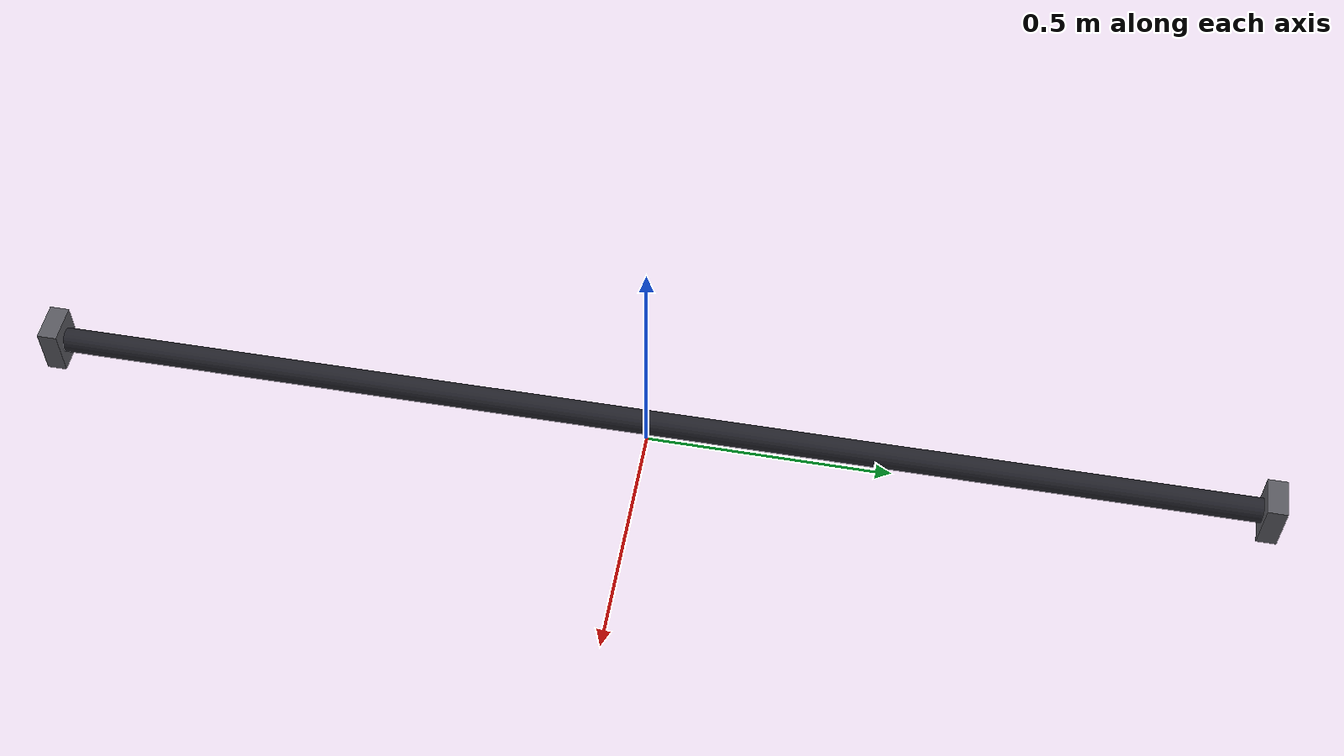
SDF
<?xml version="1.0"?>
<sdf version="1.10">
  <model name="separator_star_shaft">
    <static>false</static>
    <self_collide>false</self_collide>

    <link name="base">
      <inertial>
        <mass>8.0</mass>
        <inertia>
          <ixx>4.2</ixx><ixy>0</ixy><ixz>0</ixz>
          <iyy>0.002</iyy><iyz>0</iyz><izz>4.2</izz>
        </inertia>
      </inertial>
      <visual name="left_bearing">
        <pose>0 -1.245 0.055 0 0 0</pose>
        <geometry><box><size>0.080 0.040 0.100</size></box></geometry>
        <material><ambient>0.25 0.25 0.28 1</ambient><diffuse>0.35 0.35 0.38 1</diffuse></material>
      </visual>
      <visual name="right_bearing">
        <pose>0 1.245 0.055 0 0 0</pose>
        <geometry><box><size>0.080 0.040 0.100</size></box></geometry>
        <material><ambient>0.25 0.25 0.28 1</ambient><diffuse>0.35 0.35 0.38 1</diffuse></material>
      </visual>
    </link>

    <link name="rotor">
      <pose>0 0 0.055 0 0 0</pose>
      <inertial>
        <mass>12.0</mass>
        <inertia>
          <ixx>6.16</ixx><ixy>0</ixy><ixz>0</ixz>
          <iyy>0.004</iyy><iyz>0</iyz><izz>6.16</izz>
        </inertia>
      </inertial>

      <!-- One continuous transverse roller replaces the former 25-disc row. -->
      <collision name="roller_collision">
        <pose>0 0 0 1.570796327 0 0</pose>
        <max_contacts>24</max_contacts>
        <geometry>
          <cylinder><radius>0.025</radius><length>2.480</length></cylinder>
        </geometry>
        <surface>
          <friction>
            <ode><mu>1.10</mu><mu2>0.85</mu2><fdir1>1 0 0</fdir1></ode>
          </friction>
          <bounce>
            <restitution_coefficient>0.0</restitution_coefficient>
            <threshold>1000</threshold>
          </bounce>
          <contact>
            <ode><kp>50000000</kp><kd>50000</kd><max_vel>0.03</max_vel><min_depth>0.0005</min_depth></ode>
          </contact>
        </surface>
      </collision>

      <visual name="roller_visual">
        <pose>0 0 0 1.570796327 0 0</pose>
        <geometry>
          <cylinder><radius>0.025</radius><length>2.480</length></cylinder>
        </geometry>
        <material>
          <ambient>0.08 0.08 0.10 1</ambient>
          <diffuse>0.14 0.14 0.17 1</diffuse>
          <specular>0.35 0.35 0.35 1</specular>
        </material>
      </visual>
    </link>

    <joint name="world_fixed" type="fixed">
      <parent>world</parent><child>base</child>
    </joint>
    <joint name="shaft_joint" type="revolute">
      <parent>base</parent><child>rotor</child>
      <axis>
        <xyz>0 1 0</xyz>
        <limit><lower>-1e16</lower><upper>1e16</upper><effort>400</effort><velocity>120</velocity></limit>
        <dynamics><damping>0.02</damping><friction>0.0</friction></dynamics>
      </axis>
    </joint>

    <plugin filename="gz-sim-joint-controller-system" name="gz::sim::systems::JointController">
      <joint_name>shaft_joint</joint_name>
      <topic>/singulator/separator/screen/cmd_vel</topic>
      <initial_velocity>80.0</initial_velocity>
    </plugin>
  </model>
</sdf>
